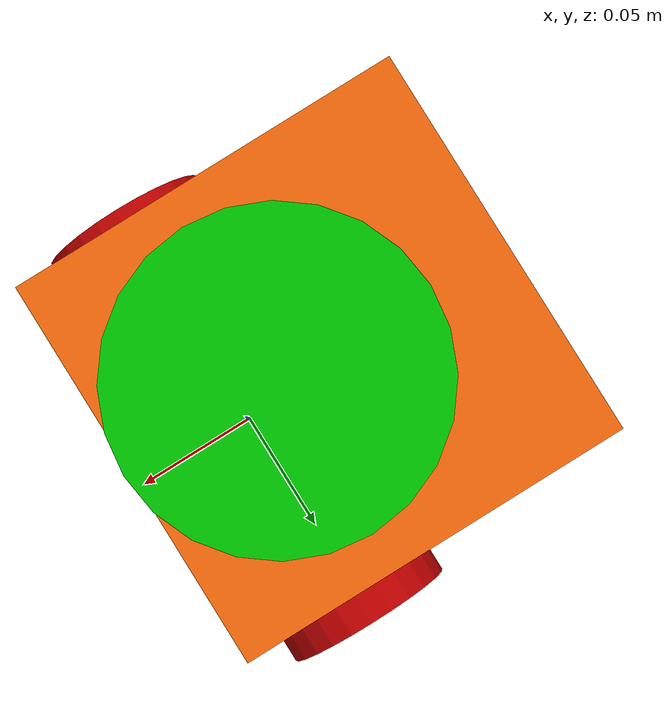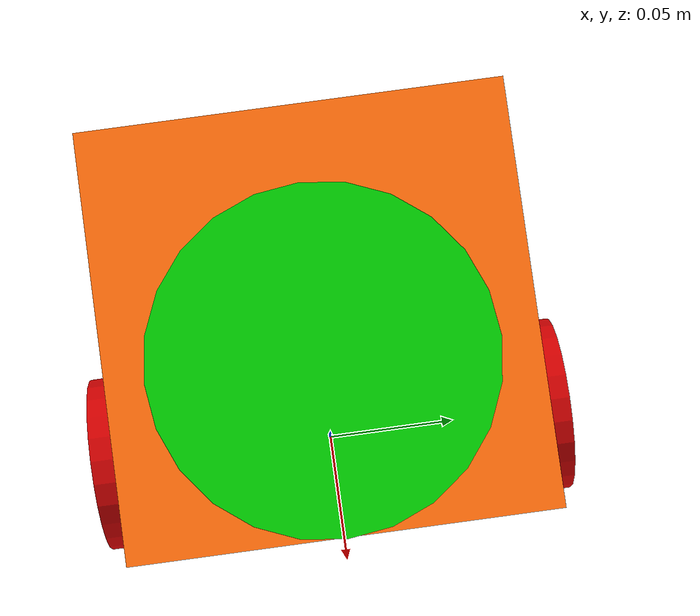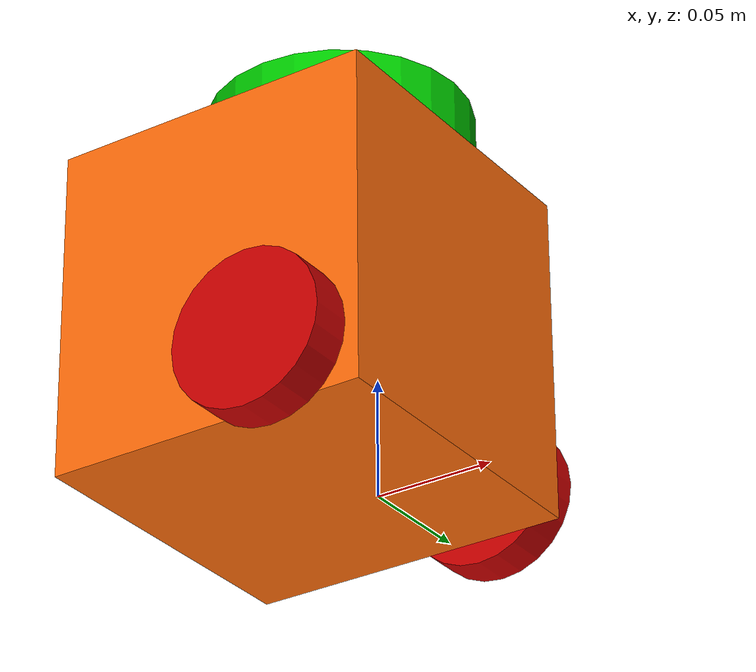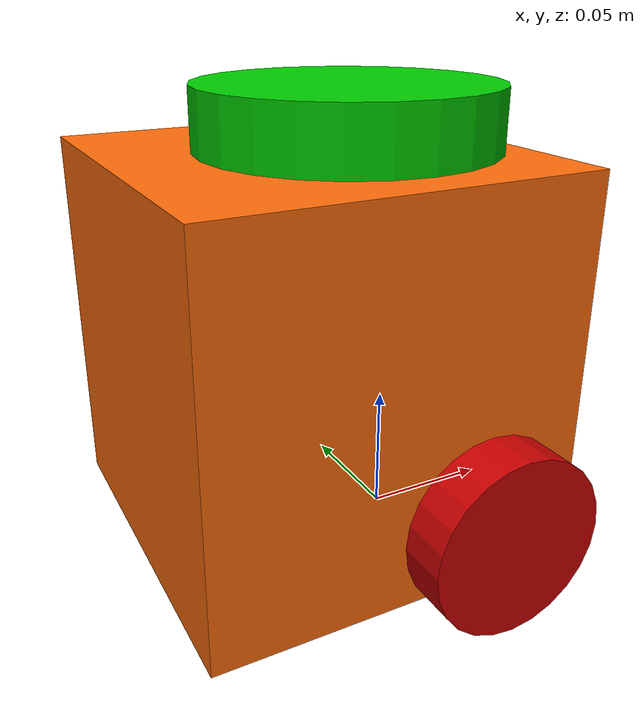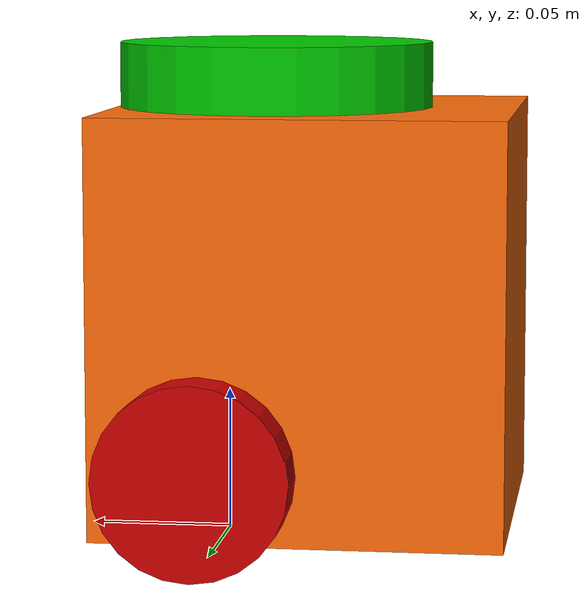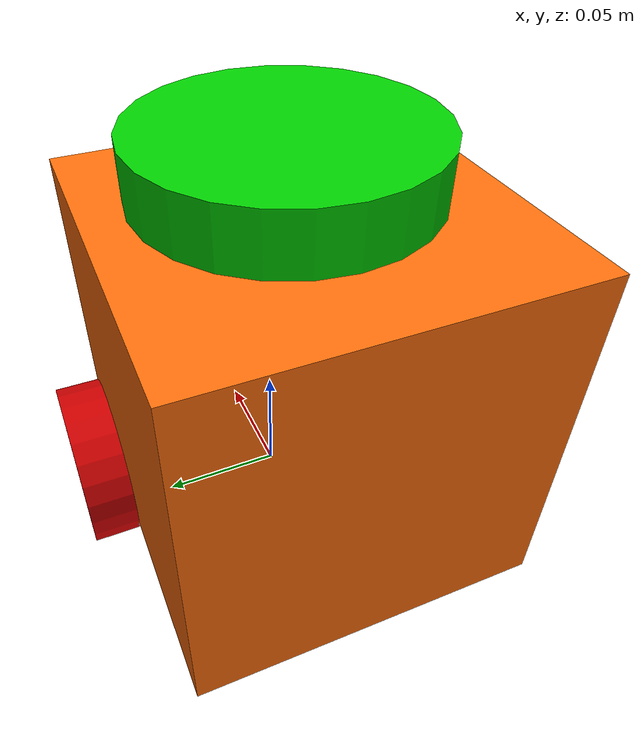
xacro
<?xml version="1.0" ?>
<robot name="trolly" xmlns:xacro="http://ros.org/wiki/xacro">

  <xacro:include filename="$(find trolly)/urdf/coloured_materials.xacro"/>
  <xacro:include filename="$(find trolly)/urdf/plugins.gazebo.xacro"/>

  <link name="base_footprint"/>

  <joint name="base_joint" type="fixed">
    <parent link="base_footprint"/>
    <child link="base_link"/>
    <origin xyz="0.0 0.0 0.010" rpy="0 0 0"/>
  </joint>

  <link name="base_link">
    <visual>
      <origin xyz="-0.032 0 0.070" rpy="0 0 0"/>
      <geometry>
        <box size="0.140 0.140 0.143"/>
      </geometry>
      <material name="orange"/>
    </visual>

    <collision>
      <origin xyz="-0.032 0 0.070" rpy="0 0 0"/>
      <geometry>
        <box size="0.140 0.140 0.143"/>
      </geometry>
    </collision>

    <inertial>
      <origin xyz="0 0 0" rpy="0 0 0"/>
      <mass value="8.2573504e-01"/>
      <inertia ixx="2.2124416e-03" ixy="-1.2294101e-05" ixz="3.4938785e-05"
               iyy="2.1193702e-03" iyz="-5.0120904e-06"
               izz="2.0064271e-03" />
    </inertial>
  </link>

  <gazebo reference="base_link">
    <material>Gazebo/Orange</material>
  </gazebo>

  <joint name="wheel_left_joint" type="continuous">
    <parent link="base_link"/>
    <child link="wheel_left_link"/>
    <origin xyz="0.0 0.08 0.023" rpy="-1.57 0 0"/>
    <axis xyz="0 0 1"/>
  </joint>

  <link name="wheel_left_link">
    <visual>
      <origin xyz="0 0 0" rpy="0 0 0"/>
      <geometry>
        <cylinder length="0.018" radius="0.033"/>
      </geometry>
      <material name="red"/>
    </visual>

    <collision>
      <origin xyz="0 0 0" rpy="0 0 0"/>
      <geometry>
        <cylinder length="0.018" radius="0.033"/>
      </geometry>
    </collision>

    <inertial>
      <origin xyz="0 0 0" />
      <mass value="2.8498940e-02" />
      <inertia ixx="1.1175580e-05" ixy="-4.2369783e-11" ixz="-5.9381719e-09"
               iyy="1.1192413e-05" iyz="-1.4400107e-11"
               izz="2.0712558e-05" />
      </inertial>
  </link>

  <gazebo reference="wheel_left_link">
    <material>Gazebo/Red</material>
  </gazebo>

  <joint name="wheel_right_joint" type="continuous">
    <parent link="base_link"/>
    <child link="wheel_right_link"/>
    <origin xyz="0.0 -0.080 0.023" rpy="-1.57 0 0"/>
    <axis xyz="0 0 1"/>
  </joint>

  <link name="wheel_right_link">
    <visual>
      <origin xyz="0 0 0" rpy="0 0 0"/>
      <geometry>
        <cylinder length="0.018" radius="0.033"/>
      </geometry>
      <material name="red"/>
    </visual>

    <collision>
      <origin xyz="0 0 0" rpy="0 0 0"/>
      <geometry>
        <cylinder length="0.018" radius="0.033"/>
      </geometry>
    </collision>

    <inertial>
      <origin xyz="0 0 0" />
      <mass value="2.8498940e-02" />
      <inertia ixx="1.1175580e-05" ixy="-4.2369783e-11" ixz="-5.9381719e-09"
               iyy="1.1192413e-05" iyz="-1.4400107e-11"
               izz="2.0712558e-05" />
      </inertial>
  </link>

  <gazebo reference="wheel_right_link">
    <material>Gazebo/Red</material>
  </gazebo>

  <joint name="caster_back_joint" type="fixed">
    <parent link="base_link"/>
    <child link="caster_back_link"/>
    <origin xyz="-0.081 0 -0.004" rpy="-1.57 0 0"/>
  </joint>

  <link name="caster_back_link">
    <collision>
      <origin xyz="0 0.001 0" rpy="0 0 0"/>
      <geometry>
        <box size="0.030 0.009 0.020"/>
      </geometry>
    </collision>

    <inertial>
      <origin xyz="0 0 0" />
      <mass value="0.005" />
      <inertia ixx="0.001" ixy="0.0" ixz="0.0"
               iyy="0.001" iyz="0.0"
               izz="0.001" />
    </inertial>
  </link>

  <gazebo reference="caster_back_link">
    <material>Gazebo/Red</material>
  </gazebo>

  <joint name="imu_joint" type="fixed">
    <parent link="base_link"/>
    <child link="imu_link"/>
    <origin xyz="-0.032 0 0.068" rpy="0 0 0"/>
  </joint>

  <link name="imu_link"/>

  <joint name="scan_joint" type="fixed">
    <parent link="base_link"/>
    <child link="base_scan"/>
    <origin xyz="-0.032 0 0.155" rpy="0 0 0"/>
  </joint>

  <link name="base_scan">
    <visual>
      <origin xyz="0.015 0 -0.0065" rpy="0 0 0"/>
      <geometry>
        <cylinder length="0.0315" radius="0.055"/>
      </geometry>
      <material name="green"/>
    </visual>

    <collision>
      <origin xyz="0.015 0 -0.0065" rpy="0 0 0"/>
      <geometry>
        <cylinder length="0.0315" radius="0.055"/>
      </geometry>
    </collision>

    <inertial>
      <mass value="0.114" />
      <origin xyz="0 0 0" />
      <inertia ixx="0.001" ixy="0.0" ixz="0.0"
               iyy="0.001" iyz="0.0"
               izz="0.001" />
    </inertial>
  </link>

  <gazebo reference="base_scan">
    <material>Gazebo/Green</material>
  </gazebo>

</robot>

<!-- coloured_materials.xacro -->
<robot name="xacro_properties" xmlns:xacro="http://ros.org/wiki/xacro">

  <!-- Init colour -->
  <material name="black">
      <color rgba="0.0 0.0 0.0 1.0"/>
  </material>

  <material name="dark">
    <color rgba="0.3 0.3 0.3 1.0"/>
  </material>
  <material name="light_black">
    <color rgba="0.4 0.4 0.4 1.0"/>
  </material>

  <material name="blue">
    <color rgba="0.0 0.0 0.8 1.0"/>
  </material>

  <material name="yellow">
    <color rgba="1.0 1.0 0.0 1.0"/>
  </material>

  <material name="green">
    <color rgba="0.0 0.8 0.0 1.0"/>
  </material>

  <material name="grey">
    <color rgba="0.5 0.5 0.5 1.0"/>
  </material>

  <material name="orange">
    <color rgba="${255/255} ${108/255} ${10/255} 1.0"/>
  </material>

  <material name="brown">
    <color rgba="${222/255} ${207/255} ${195/255} 1.0"/>
  </material>

  <material name="red">
    <color rgba="0.8 0.0 0.0 1.0"/>
  </material>

  <material name="white">
    <color rgba="1.0 1.0 1.0 1.0"/>
  </material>
</robot>
